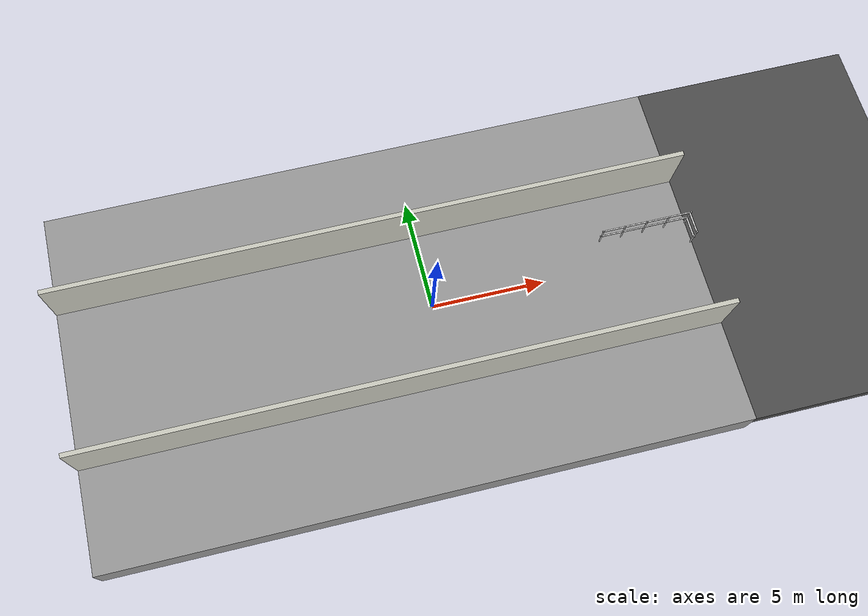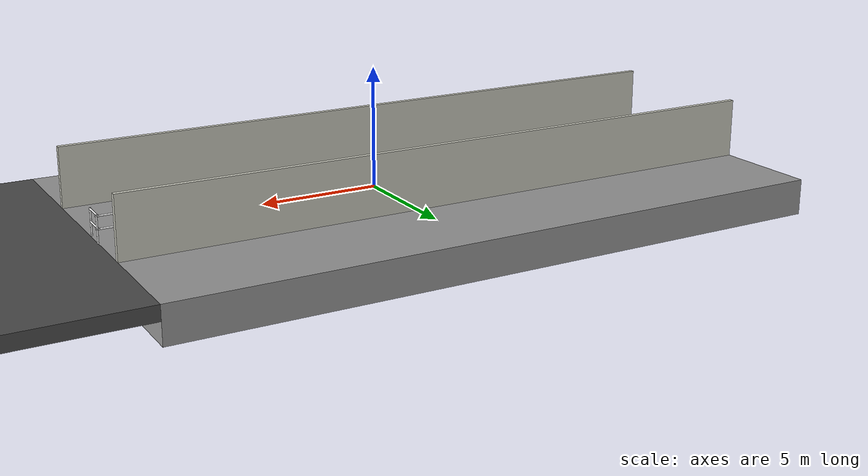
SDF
<?xml version="1.0" ?>
<sdf version="1.6">
  <world name="default">
    <gui>
      <camera name="gzclient_camera">
        <pose>6 -7 3.2 0 0.32 0.72</pose>
      </camera>
    </gui>

    <physics type="ode">
      <gravity>0 0 -9.81</gravity>
      <ode>
        <solver><type>quick</type><iters>20</iters><sor>1.0</sor></solver>
        <constraints>
          <cfm>0.0</cfm><erp>0.2</erp>
          <contact_max_correcting_vel>100.0</contact_max_correcting_vel>
          <contact_surface_layer>0.0</contact_surface_layer>
        </constraints>
      </ode>
      <real_time_update_rate>1000</real_time_update_rate>
      <max_step_size>0.001</max_step_size>
    </physics>

    <scene>
      <ambient>0.45 0.45 0.48 1</ambient>
      <background>0.72 0.78 0.88 1</background>
      <shadows>true</shadows>
      <grid>false</grid>
      <origin_visual>false</origin_visual>
    </scene>

    <!-- Single hard directional light.  Shadow contrast inside the drop is a real cue and
         must be identical between the hazard arm and the ctrl arm. -->
    <light name="sun" type="directional">
      <pose>0 0 12 0 0 0</pose>
      <diffuse>0.90 0.88 0.85 1</diffuse>
      <specular>0.25 0.25 0.25 1</specular>
      <direction>0.35 0.30 -0.89</direction>
      <cast_shadows>true</cast_shadows>
    </light>

    <model name="deck">
      <static>true</static>
      <pose>-2 0 -0.75 0 0 0</pose>
      <link name="link">
        <collision name="c">
          <geometry><box><size>28 16 1.5</size></box></geometry>
          <surface><friction><ode><mu>1.0</mu><mu2>1.0</mu2></ode></friction></surface>
        </collision>
        <visual name="v">
          <geometry><box><size>28 16 1.5</size></box></geometry>
          <material><script><uri>file://media/materials/scripts/gazebo.material</uri>
            <name>Gazebo/Grey</name></script></material>
        </visual>
      </link>
    </model>
    <model name="lower_floor">
      <static>true</static>
      <pose>66 0 -0.3 0 0 0</pose>
      <link name="link">
        <collision name="c">
          <geometry><box><size>108 16 0.6</size></box></geometry>
          <surface><friction><ode><mu>1.0</mu><mu2>1.0</mu2></ode></friction></surface>
        </collision>
        <visual name="v">
          <geometry><box><size>108 16 0.6</size></box></geometry>
          <material><script><uri>file://media/materials/scripts/gazebo.material</uri>
            <name>Gazebo/DarkGrey</name></script></material>
        </visual>
      </link>
    </model>
    <model name="wall_py">
      <static>true</static>
      <pose>-2 3.5 1.25 0 0 0</pose>
      <link name="link">
        <collision name="c">
          <geometry><box><size>28 0.2 2.5</size></box></geometry>
          <surface><friction><ode><mu>1.0</mu><mu2>1.0</mu2></ode></friction></surface>
        </collision>
        <visual name="v">
          <geometry><box><size>28 0.2 2.5</size></box></geometry>
          <material><script><uri>file://media/materials/scripts/gazebo.material</uri>
            <name>Gazebo/PaintedWall</name></script></material>
        </visual>
      </link>
    </model>
    <model name="wall_my">
      <static>true</static>
      <pose>-2 -3.5 1.25 0 0 0</pose>
      <link name="link">
        <collision name="c">
          <geometry><box><size>28 0.2 2.5</size></box></geometry>
          <surface><friction><ode><mu>1.0</mu><mu2>1.0</mu2></ode></friction></surface>
        </collision>
        <visual name="v">
          <geometry><box><size>28 0.2 2.5</size></box></geometry>
          <material><script><uri>file://media/materials/scripts/gazebo.material</uri>
            <name>Gazebo/PaintedWall</name></script></material>
        </visual>
      </link>
    </model>
    <model name="rail_py">
      <static>true</static>
      <pose>0 0 0 0 0 0</pose>
      <link name="link">
        <collision name="c_s0">
          <pose>8 1.3 0.55 0 0 0</pose>
          <geometry><cylinder><radius>0.03</radius><length>1.1</length></cylinder></geometry>
        </collision>
        <visual name="s0">
          <pose>8 1.3 0.55 0 0 0</pose>
          <geometry><cylinder><radius>0.03</radius><length>1.1</length></cylinder></geometry>
          <material><script><uri>file://media/materials/scripts/gazebo.material</uri>
            <name>Gazebo/White</name></script></material>
        </visual>
        <collision name="c_s1">
          <pose>9 1.3 0.55 0 0 0</pose>
          <geometry><cylinder><radius>0.03</radius><length>1.1</length></cylinder></geometry>
        </collision>
        <visual name="s1">
          <pose>9 1.3 0.55 0 0 0</pose>
          <geometry><cylinder><radius>0.03</radius><length>1.1</length></cylinder></geometry>
          <material><script><uri>file://media/materials/scripts/gazebo.material</uri>
            <name>Gazebo/White</name></script></material>
        </visual>
        <collision name="c_s2">
          <pose>10 1.3 0.55 0 0 0</pose>
          <geometry><cylinder><radius>0.03</radius><length>1.1</length></cylinder></geometry>
        </collision>
        <visual name="s2">
          <pose>10 1.3 0.55 0 0 0</pose>
          <geometry><cylinder><radius>0.03</radius><length>1.1</length></cylinder></geometry>
          <material><script><uri>file://media/materials/scripts/gazebo.material</uri>
            <name>Gazebo/White</name></script></material>
        </visual>
        <collision name="c_s3">
          <pose>11 1.3 0.55 0 0 0</pose>
          <geometry><cylinder><radius>0.03</radius><length>1.1</length></cylinder></geometry>
        </collision>
        <visual name="s3">
          <pose>11 1.3 0.55 0 0 0</pose>
          <geometry><cylinder><radius>0.03</radius><length>1.1</length></cylinder></geometry>
          <material><script><uri>file://media/materials/scripts/gazebo.material</uri>
            <name>Gazebo/White</name></script></material>
        </visual>
        <collision name="c_s4">
          <pose>12 1.3 0.55 0 0 0</pose>
          <geometry><cylinder><radius>0.03</radius><length>1.1</length></cylinder></geometry>
        </collision>
        <visual name="s4">
          <pose>12 1.3 0.55 0 0 0</pose>
          <geometry><cylinder><radius>0.03</radius><length>1.1</length></cylinder></geometry>
          <material><script><uri>file://media/materials/scripts/gazebo.material</uri>
            <name>Gazebo/White</name></script></material>
        </visual>
        <collision name="c_s5">
          <pose>10 1.3 1.05 0 1.5708 0</pose>
          <geometry><cylinder><radius>0.035</radius><length>4.1</length></cylinder></geometry>
        </collision>
        <visual name="s5">
          <pose>10 1.3 1.05 0 1.5708 0</pose>
          <geometry><cylinder><radius>0.035</radius><length>4.1</length></cylinder></geometry>
          <material><script><uri>file://media/materials/scripts/gazebo.material</uri>
            <name>Gazebo/White</name></script></material>
        </visual>
        <collision name="c_s6">
          <pose>10 1.3 0.55 0 1.5708 0</pose>
          <geometry><cylinder><radius>0.035</radius><length>4.1</length></cylinder></geometry>
        </collision>
        <visual name="s6">
          <pose>10 1.3 0.55 0 1.5708 0</pose>
          <geometry><cylinder><radius>0.035</radius><length>4.1</length></cylinder></geometry>
          <material><script><uri>file://media/materials/scripts/gazebo.material</uri>
            <name>Gazebo/White</name></script></material>
        </visual>
        <collision name="c_s7">
          <pose>11.95 0.35 0.55 0 0 0</pose>
          <geometry><cylinder><radius>0.03</radius><length>1.1</length></cylinder></geometry>
        </collision>
        <visual name="s7">
          <pose>11.95 0.35 0.55 0 0 0</pose>
          <geometry><cylinder><radius>0.03</radius><length>1.1</length></cylinder></geometry>
          <material><script><uri>file://media/materials/scripts/gazebo.material</uri>
            <name>Gazebo/White</name></script></material>
        </visual>
        <collision name="c_s8">
          <pose>11.95 0.825 1.05 1.5708 0 0</pose>
          <geometry><cylinder><radius>0.035</radius><length>1.05</length></cylinder></geometry>
        </collision>
        <visual name="s8">
          <pose>11.95 0.825 1.05 1.5708 0 0</pose>
          <geometry><cylinder><radius>0.035</radius><length>1.05</length></cylinder></geometry>
          <material><script><uri>file://media/materials/scripts/gazebo.material</uri>
            <name>Gazebo/White</name></script></material>
        </visual>
        <collision name="c_s9">
          <pose>11.95 0.825 0.55 1.5708 0 0</pose>
          <geometry><cylinder><radius>0.035</radius><length>1.05</length></cylinder></geometry>
        </collision>
        <visual name="s9">
          <pose>11.95 0.825 0.55 1.5708 0 0</pose>
          <geometry><cylinder><radius>0.035</radius><length>1.05</length></cylinder></geometry>
          <material><script><uri>file://media/materials/scripts/gazebo.material</uri>
            <name>Gazebo/White</name></script></material>
        </visual>
      </link>
    </model>
    <!-- ===== capture cameras (sensor-only links, no visible body) ===== -->
    <model name="cam_h03_d2">
      <static>true</static>
      <pose>10 0 0.3 0 0.174533 0</pose>
      <link name="link">
        <sensor name="h03_d2" type="camera">
          <camera name="h03_d2">
            <horizontal_fov>1.047198</horizontal_fov>
            <image><width>1920</width><height>1080</height><format>R8G8B8</format></image>
            <clip><near>0.05</near><far>150</far></clip>
          </camera>
          <always_on>0</always_on>
          <update_rate>1.0</update_rate>
          <visualize>0</visualize>
          <plugin name="plug_h03_d2" filename="libgazebo_ros_camera.so">
            <ros><namespace>/gzcam/h03_d2</namespace></ros>
            <camera_name>cam</camera_name>
            <frame_name>gzcam_h03_d2_optical</frame_name>
            <hack_baseline>0.0</hack_baseline>
          </plugin>
        </sensor>
      </link>
    </model>
    <model name="cam_h03_d5">
      <static>true</static>
      <pose>7 0 0.3 0 0.174533 0</pose>
      <link name="link">
        <sensor name="h03_d5" type="camera">
          <camera name="h03_d5">
            <horizontal_fov>1.047198</horizontal_fov>
            <image><width>1920</width><height>1080</height><format>R8G8B8</format></image>
            <clip><near>0.05</near><far>150</far></clip>
          </camera>
          <always_on>0</always_on>
          <update_rate>1.0</update_rate>
          <visualize>0</visualize>
          <plugin name="plug_h03_d5" filename="libgazebo_ros_camera.so">
            <ros><namespace>/gzcam/h03_d5</namespace></ros>
            <camera_name>cam</camera_name>
            <frame_name>gzcam_h03_d5_optical</frame_name>
            <hack_baseline>0.0</hack_baseline>
          </plugin>
        </sensor>
      </link>
    </model>
    <model name="cam_h03_d10">
      <static>true</static>
      <pose>2 0 0.3 0 0.174533 0</pose>
      <link name="link">
        <sensor name="h03_d10" type="camera">
          <camera name="h03_d10">
            <horizontal_fov>1.047198</horizontal_fov>
            <image><width>1920</width><height>1080</height><format>R8G8B8</format></image>
            <clip><near>0.05</near><far>150</far></clip>
          </camera>
          <always_on>0</always_on>
          <update_rate>1.0</update_rate>
          <visualize>0</visualize>
          <plugin name="plug_h03_d10" filename="libgazebo_ros_camera.so">
            <ros><namespace>/gzcam/h03_d10</namespace></ros>
            <camera_name>cam</camera_name>
            <frame_name>gzcam_h03_d10_optical</frame_name>
            <hack_baseline>0.0</hack_baseline>
          </plugin>
        </sensor>
      </link>
    </model>
    <model name="cam_h09_d2">
      <static>true</static>
      <pose>10 0 0.9 0 0.174533 0</pose>
      <link name="link">
        <sensor name="h09_d2" type="camera">
          <camera name="h09_d2">
            <horizontal_fov>1.047198</horizontal_fov>
            <image><width>1920</width><height>1080</height><format>R8G8B8</format></image>
            <clip><near>0.05</near><far>150</far></clip>
          </camera>
          <always_on>0</always_on>
          <update_rate>1.0</update_rate>
          <visualize>0</visualize>
          <plugin name="plug_h09_d2" filename="libgazebo_ros_camera.so">
            <ros><namespace>/gzcam/h09_d2</namespace></ros>
            <camera_name>cam</camera_name>
            <frame_name>gzcam_h09_d2_optical</frame_name>
            <hack_baseline>0.0</hack_baseline>
          </plugin>
        </sensor>
      </link>
    </model>
    <model name="cam_h09_d5">
      <static>true</static>
      <pose>7 0 0.9 0 0.174533 0</pose>
      <link name="link">
        <sensor name="h09_d5" type="camera">
          <camera name="h09_d5">
            <horizontal_fov>1.047198</horizontal_fov>
            <image><width>1920</width><height>1080</height><format>R8G8B8</format></image>
            <clip><near>0.05</near><far>150</far></clip>
          </camera>
          <always_on>0</always_on>
          <update_rate>1.0</update_rate>
          <visualize>0</visualize>
          <plugin name="plug_h09_d5" filename="libgazebo_ros_camera.so">
            <ros><namespace>/gzcam/h09_d5</namespace></ros>
            <camera_name>cam</camera_name>
            <frame_name>gzcam_h09_d5_optical</frame_name>
            <hack_baseline>0.0</hack_baseline>
          </plugin>
        </sensor>
      </link>
    </model>
    <model name="cam_h09_d10">
      <static>true</static>
      <pose>2 0 0.9 0 0.174533 0</pose>
      <link name="link">
        <sensor name="h09_d10" type="camera">
          <camera name="h09_d10">
            <horizontal_fov>1.047198</horizontal_fov>
            <image><width>1920</width><height>1080</height><format>R8G8B8</format></image>
            <clip><near>0.05</near><far>150</far></clip>
          </camera>
          <always_on>0</always_on>
          <update_rate>1.0</update_rate>
          <visualize>0</visualize>
          <plugin name="plug_h09_d10" filename="libgazebo_ros_camera.so">
            <ros><namespace>/gzcam/h09_d10</namespace></ros>
            <camera_name>cam</camera_name>
            <frame_name>gzcam_h09_d10_optical</frame_name>
            <hack_baseline>0.0</hack_baseline>
          </plugin>
        </sensor>
      </link>
    </model>
    <model name="cam_h03_d12">
      <static>true</static>
      <pose>10.8 0 0.3 0 0.174533 0</pose>
      <link name="link">
        <sensor name="h03_d12" type="camera">
          <camera name="h03_d12">
            <horizontal_fov>1.047198</horizontal_fov>
            <image><width>1920</width><height>1080</height><format>R8G8B8</format></image>
            <clip><near>0.05</near><far>150</far></clip>
          </camera>
          <always_on>0</always_on>
          <update_rate>1.0</update_rate>
          <visualize>0</visualize>
          <plugin name="plug_h03_d12" filename="libgazebo_ros_camera.so">
            <ros><namespace>/gzcam/h03_d12</namespace></ros>
            <camera_name>cam</camera_name>
            <frame_name>gzcam_h03_d12_optical</frame_name>
            <hack_baseline>0.0</hack_baseline>
          </plugin>
        </sensor>
      </link>
    </model>
    <model name="cam_rs_d2">
      <static>true</static>
      <pose>10 0 0.125 0 0.261 0</pose>
      <link name="link">
        <sensor name="rs_d2" type="camera">
          <camera name="rs_d2">
            <horizontal_fov>1.204300</horizontal_fov>
            <image><width>1280</width><height>720</height><format>R8G8B8</format></image>
            <clip><near>0.05</near><far>150</far></clip>
          </camera>
          <always_on>0</always_on>
          <update_rate>1.0</update_rate>
          <visualize>0</visualize>
          <plugin name="plug_rs_d2" filename="libgazebo_ros_camera.so">
            <ros><namespace>/gzcam/rs_d2</namespace></ros>
            <camera_name>cam</camera_name>
            <frame_name>gzcam_rs_d2_optical</frame_name>
            <hack_baseline>0.0</hack_baseline>
          </plugin>
        </sensor>
      </link>
    </model>
    <model name="cam_rs_d5">
      <static>true</static>
      <pose>7 0 0.125 0 0.261 0</pose>
      <link name="link">
        <sensor name="rs_d5" type="camera">
          <camera name="rs_d5">
            <horizontal_fov>1.204300</horizontal_fov>
            <image><width>1280</width><height>720</height><format>R8G8B8</format></image>
            <clip><near>0.05</near><far>150</far></clip>
          </camera>
          <always_on>0</always_on>
          <update_rate>1.0</update_rate>
          <visualize>0</visualize>
          <plugin name="plug_rs_d5" filename="libgazebo_ros_camera.so">
            <ros><namespace>/gzcam/rs_d5</namespace></ros>
            <camera_name>cam</camera_name>
            <frame_name>gzcam_rs_d5_optical</frame_name>
            <hack_baseline>0.0</hack_baseline>
          </plugin>
        </sensor>
      </link>
    </model>
  </world>
</sdf>
